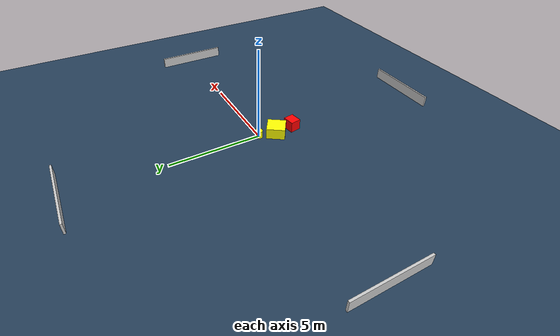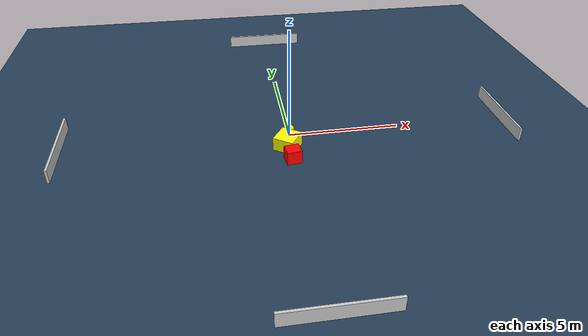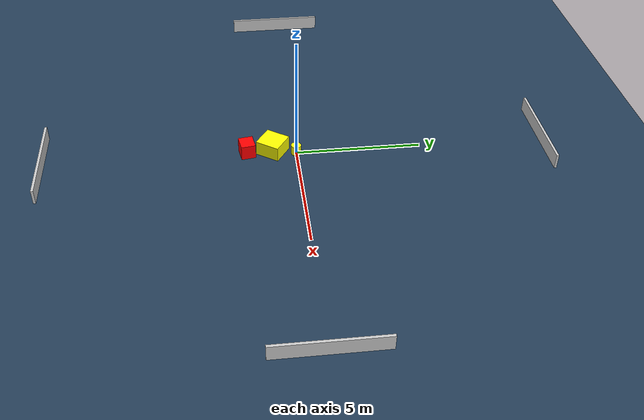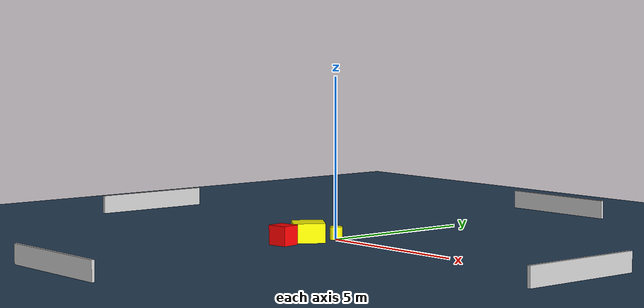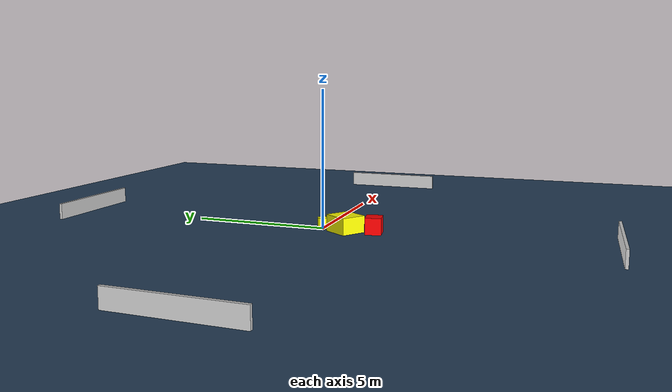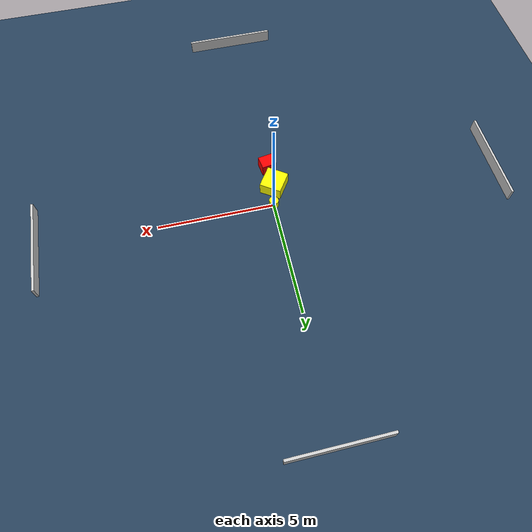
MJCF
<?xml version="1.0" ?>
<mujoco model="generated_environment">
  <option timestep="0.01" integrator="RK4" cone="elliptic"/>
  <default>
    <geom density="1"/>
  </default>
  <asset>
    <texture builtin="gradient" height="3072" name="skybox" rgb1="0.3 0.5 0.7" rgb2="0 0 0" type="skybox" width="512"/>
    <texture builtin="checker" height="300" name="groundplane" rgb1="0.2 0.3 0.4" rgb2="0.1 0.2 0.3" type="2d" width="300"/>
    <material name="groundplane" reflectance="0.2" texrepeat="5 5" texture="groundplane"/>
  </asset>
  <worldbody>
    <light dir="0 0 -1" directional="true" pos="0 0 1.5"/>
    <geom condim="3" friction="0.5 0.005 0.001" material="groundplane" name="floor" pos="0 0 0" size="0 0 0.05" type="plane"/>
    <body name="walls">
      <geom name="wall_1" condim="4" pos="-10.0 0.0 0.3" rgba="0.800000011920929 0.800000011920929 0.800000011920929 1.0" size="0.05 2.0 0.3" type="box"/>
      <geom name="wall_2" condim="4" pos="10.0 0.0 0.3" rgba="0.800000011920929 0.800000011920929 0.800000011920929 1.0" size="0.05 2.0 0.3" type="box"/>
      <geom name="wall_3" condim="4" pos="0.0 -10.0 0.3" rgba="0.800000011920929 0.800000011920929 0.800000011920929 1.0" size="2.0 0.05 0.3" type="box"/>
      <geom name="wall_4" condim="4" pos="0.0 10.0 0.3" rgba="0.800000011920929 0.800000011920929 0.800000011920929 1.0" size="2.0 0.05 0.3" type="box"/>
    </body>
    <body name="robot">
      <joint name="joint_x" type="slide" pos="0 0 0" axis="1 0 0"/>
      <joint name="joint_y" type="slide" pos="0 0 0" axis="0 1 0"/>
      <geom name="robot" type="cylinder" pos="0.0 0.0 0.2" size="0.2 0.2 0.0" mass="5.0" friction="1.0 0.005 0.0001" condim="4" rgba="1.0 1.0 0.0 1.0"/>
    </body>
    <body name="obstacle_1_movable">
      <geom name="obstacle_1_movable" condim="4" pos="-0.22158031627147784 -0.9217315101744462 0.3" euler="0 0 235.74994930953355" friction="0.0 0.005 0.001" rgba="1.0 1.0 0.0 1.0" size="0.4917101582074784 0.46919375368011534 0.3" type="box" mass="0.1"/>
      <joint type="free"/>
    </body>
    <body name="obstacle_2_static">
      <geom name="obstacle_2_static" condim="4" pos="-0.14957672217386583 -1.95215414712088 0.3" euler="0 0 188.7376743570472" friction="0.0 0.005 0.001" rgba="1.0 0.0 0.0 1.0" size="0.31957143580355724 0.28804126916475126 0.3" type="box"/>
    </body>
  </worldbody>
  <actuator>
    <motor name="actuator_x" joint="joint_x" gear="1" ctrlrange="-1 1"/>
    <motor name="actuator_y" joint="joint_y" gear="1" ctrlrange="-1 1"/>
  </actuator>
</mujoco>
